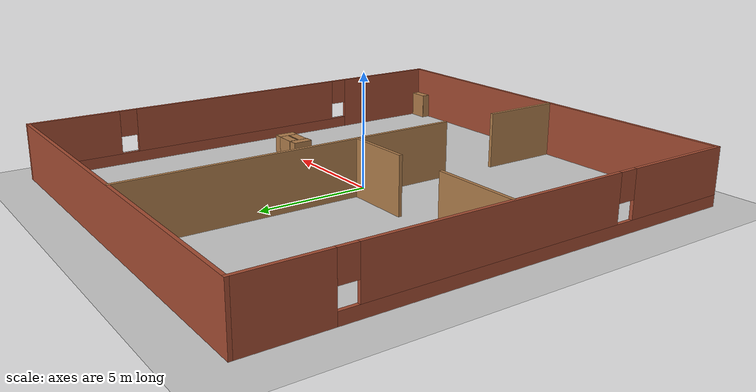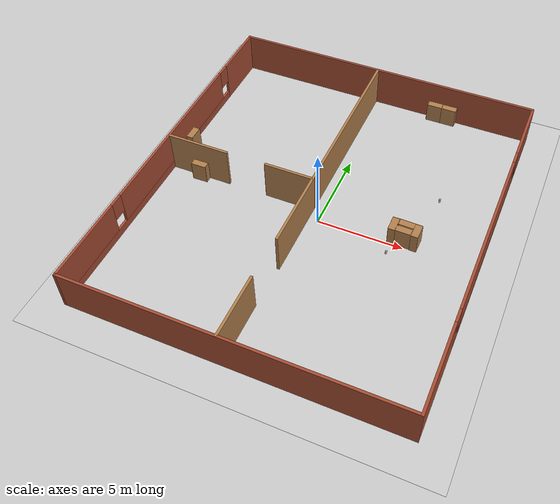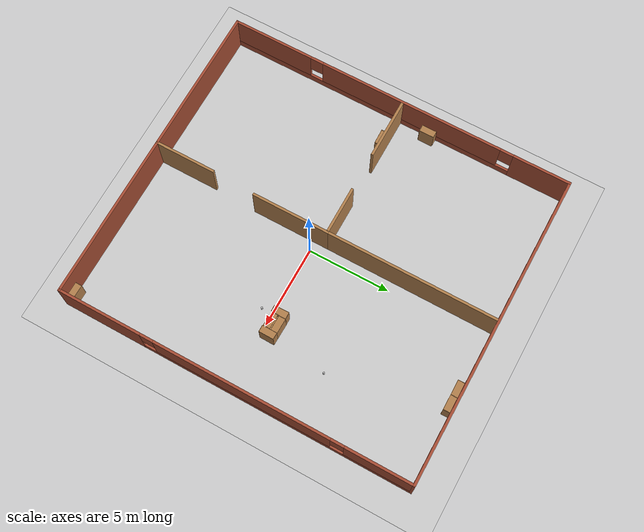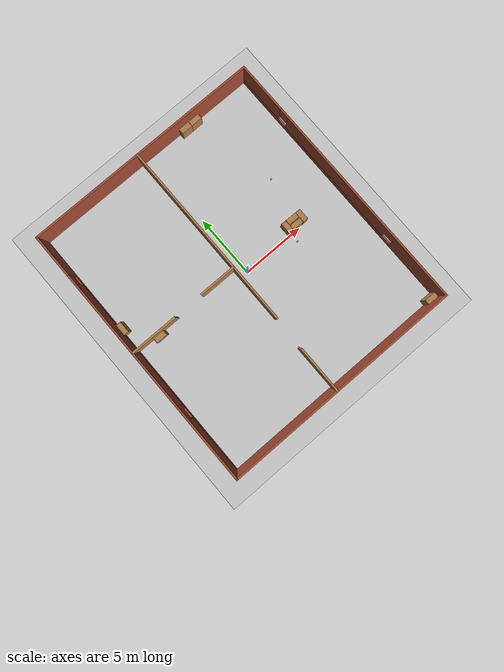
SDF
<sdf version="1.6">
 <world name="default">
  <light name="sun" type="directional">
   <pose>0 0 10 0 -0 0</pose>
   <diffuse>0.8 0.8 0.8 1</diffuse>
   <specular>0.2 0.2 0.2 1</specular>
   <attenuation>
    <range>1000</range>
    <constant>0.9</constant>
    <linear>0.01</linear>
    <quadratic>0.001</quadratic>
   </attenuation>
   <direction>-0.5 0.1 -0.9</direction>
  </light>
  <model name="ground_plane">
   <static>1</static>
   <link name="link">
    <collision name="collision">
     <geometry><plane><normal>0 0 1</normal><size>100 100</size></plane></geometry>
     <surface>
      <contact><collide_bitmask>65535</collide_bitmask></contact>
      <friction><ode><mu>100</mu><mu2>50</mu2></ode></friction>
     </surface>
    </collision>
    <visual name="visual">
     <cast_shadows>0</cast_shadows>
     <geometry><plane><normal>0 0 1</normal><size>100 100</size></plane></geometry>
     <material>
      <script><uri>file://media/materials/scripts/gazebo.material</uri><name>Gazebo/Grey</name></script>
     </material>
    </visual>
   </link>
  </model>
  <gravity>0 0 -9.8</gravity>
  <magnetic_field>6e-06 2.3e-05 -4.2e-05</magnetic_field>
  <atmosphere type="adiabatic"/>
  <physics name="default_physics" default="0" type="ode">
   <max_step_size>0.001</max_step_size>
   <real_time_factor>1</real_time_factor>
   <real_time_update_rate>1000</real_time_update_rate>
  </physics>
  <scene><ambient>0.4 0.4 0.4 1</ambient><background>0.7 0.7 0.7 1</background><shadows>1</shadows></scene>
  <audio><device>default</device></audio>
  <spherical_coordinates>
   <surface_model>EARTH_WGS84</surface_model>
   <latitude_deg>0</latitude_deg>
   <longitude_deg>0</longitude_deg>
   <elevation>0</elevation>
   <heading_deg>0</heading_deg>
  </spherical_coordinates>
  <model name="room">
   <pose>-0.232569 0.4756 0 0 -0 0</pose>
   <link name="Wall_11">
    <collision name="Wall_11_Collision">
     <geometry><box><size>19 0.15 2.5</size></box></geometry>
     <pose>0 0 1.25 0 -0 0</pose>
    </collision>
    <visual name="Wall_11_Visual">
     <pose>0 0 1.25 0 -0 0</pose>
     <geometry><box><size>19 0.15 2.5</size></box></geometry>
     <material>
      <script><uri>file://media/materials/scripts/gazebo.material</uri><name>Gazebo/Bricks</name></script>
      <ambient>1 1 1 1</ambient>
     </material>
     <meta><layer>0</layer></meta>
    </visual>
    <pose>0 -10.675 0 0 -0 0</pose>
   </link>
   <link name="Wall_12">
    <pose>9.425 0 0 0 -0 1.5708</pose>
    <visual name="Wall_12_Visual_0">
     <pose>-8.17882 0 1.25 0 -0 0</pose>
     <geometry><box><size>5.14235 0.15 2.5</size></box></geometry>
     <material>
      <script><uri>file://media/materials/scripts/gazebo.material</uri><name>Gazebo/Bricks</name></script>
      <ambient>1 1 1 1</ambient>
     </material>
     <meta><layer>0</layer></meta>
    </visual>
    <collision name="Wall_12_Collision_0">
     <geometry><box><size>5.14235 0.15 2.5</size></box></geometry>
     <pose>-8.17882 0 1.25 0 -0 0</pose>
    </collision>
    <visual name="Wall_12_Visual_1">
     <pose>2.57118 0 0.25 0 -0 0</pose>
     <geometry><box><size>16.3576 0.15 0.5</size></box></geometry>
     <material>
      <script><uri>file://media/materials/scripts/gazebo.material</uri><name>Gazebo/Bricks</name></script>
      <ambient>1 1 1 1</ambient>
     </material>
     <meta><layer>0</layer></meta>
    </visual>
    <collision name="Wall_12_Collision_1">
     <geometry><box><size>16.3576 0.15 0.5</size></box></geometry>
     <pose>2.57118 0 0.25 0 -0 0</pose>
    </collision>
    <visual name="Wall_12_Visual_2">
     <pose>0.524718 0 1.5 0 -0 0</pose>
     <geometry><box><size>10.6647 0.15 2</size></box></geometry>
     <material>
      <script><uri>file://media/materials/scripts/gazebo.material</uri><name>Gazebo/Bricks</name></script>
      <ambient>1 1 1 1</ambient>
     </material>
     <meta><layer>0</layer></meta>
    </visual>
    <collision name="Wall_12_Collision_2">
     <geometry><box><size>10.6647 0.15 2</size></box></geometry>
     <pose>0.524718 0 1.5 0 -0 0</pose>
    </collision>
    <visual name="Wall_12_Visual_3">
     <pose>8.70354 0 1.5 0 -0 0</pose>
     <geometry><box><size>4.09291 0.15 2</size></box></geometry>
     <material>
      <script><uri>file://media/materials/scripts/gazebo.material</uri><name>Gazebo/Bricks</name></script>
      <ambient>1 1 1 1</ambient>
     </material>
     <meta><layer>0</layer></meta>
    </visual>
    <collision name="Wall_12_Collision_3">
     <geometry><box><size>4.09291 0.15 2</size></box></geometry>
     <pose>8.70354 0 1.5 0 -0 0</pose>
    </collision>
    <visual name="Wall_12_Visual_4">
     <pose>-5.20765 0 1.9 0 -0 0</pose>
     <geometry><box><size>0.8 0.15 1.2</size></box></geometry>
     <material>
      <script><uri>file://media/materials/scripts/gazebo.material</uri><name>Gazebo/Bricks</name></script>
      <ambient>1 1 1 1</ambient>
     </material>
     <meta><layer>0</layer></meta>
    </visual>
    <collision name="Wall_12_Collision_4">
     <geometry><box><size>0.8 0.15 1.2</size></box></geometry>
     <pose>-5.20765 0 1.9 0 -0 0</pose>
    </collision>
    <visual name="Wall_12_Visual_5">
     <pose>6.25709 0 1.9 0 -0 0</pose>
     <geometry><box><size>0.8 0.15 1.2</size></box></geometry>
     <material>
      <script><uri>file://media/materials/scripts/gazebo.material</uri><name>Gazebo/Bricks</name></script>
      <ambient>1 1 1 1</ambient>
     </material>
     <meta><layer>0</layer></meta>
    </visual>
    <collision name="Wall_12_Collision_5">
     <geometry><box><size>0.8 0.15 1.2</size></box></geometry>
     <pose>6.25709 0 1.9 0 -0 0</pose>
    </collision>
   </link>
   <link name="Wall_13">
    <collision name="Wall_13_Collision">
     <geometry><box><size>19 0.15 2.5</size></box></geometry>
     <pose>0 0 1.25 0 -0 0</pose>
    </collision>
    <visual name="Wall_13_Visual">
     <pose>0 0 1.25 0 -0 0</pose>
     <geometry><box><size>19 0.15 2.5</size></box></geometry>
     <material>
      <script><uri>file://media/materials/scripts/gazebo.material</uri><name>Gazebo/Bricks</name></script>
      <ambient>1 1 1 1</ambient>
     </material>
     <meta><layer>0</layer></meta>
    </visual>
    <pose>0 10.675 0 0 -0 3.14159</pose>
   </link>
   <link name="Wall_14">
    <pose>-9.425 0 0 0 -0 -1.5708</pose>
    <visual name="Wall_14_Visual_0">
     <pose>-8.98513 0 1.25 0 -0 0</pose>
     <geometry><box><size>3.52973 0.15 2.5</size></box></geometry>
     <material>
      <script><uri>file://media/materials/scripts/gazebo.material</uri><name>Gazebo/Bricks</name></script>
      <ambient>1 1 1 1</ambient>
     </material>
     <meta><layer>0</layer></meta>
    </visual>
    <collision name="Wall_14_Collision_0">
     <geometry><box><size>3.52973 0.15 2.5</size></box></geometry>
     <pose>-8.98513 0 1.25 0 -0 0</pose>
    </collision>
    <visual name="Wall_14_Visual_1">
     <pose>1.76487 0 0.25 0 -0 0</pose>
     <geometry><box><size>17.9703 0.15 0.5</size></box></geometry>
     <material>
      <script><uri>file://media/materials/scripts/gazebo.material</uri><name>Gazebo/Bricks</name></script>
      <ambient>1 1 1 1</ambient>
     </material>
     <meta><layer>0</layer></meta>
    </visual>
    <collision name="Wall_14_Collision_1">
     <geometry><box><size>17.9703 0.15 0.5</size></box></geometry>
     <pose>1.76487 0 0.25 0 -0 0</pose>
    </collision>
    <visual name="Wall_14_Visual_2">
     <pose>-0.745967 0 1.5 0 -0 0</pose>
     <geometry><box><size>11.3486 0.15 2</size></box></geometry>
     <material>
      <script><uri>file://media/materials/scripts/gazebo.material</uri><name>Gazebo/Bricks</name></script>
      <ambient>1 1 1 1</ambient>
     </material>
     <meta><layer>0</layer></meta>
    </visual>
    <collision name="Wall_14_Collision_2">
     <geometry><box><size>11.3486 0.15 2</size></box></geometry>
     <pose>-0.745967 0 1.5 0 -0 0</pose>
    </collision>
    <visual name="Wall_14_Visual_3">
     <pose>8.23917 0 1.5 0 -0 0</pose>
     <geometry><box><size>5.02167 0.15 2</size></box></geometry>
     <material>
      <script><uri>file://media/materials/scripts/gazebo.material</uri><name>Gazebo/Bricks</name></script>
      <ambient>1 1 1 1</ambient>
     </material>
     <meta><layer>0</layer></meta>
    </visual>
    <collision name="Wall_14_Collision_3">
     <geometry><box><size>5.02167 0.15 2</size></box></geometry>
     <pose>8.23917 0 1.5 0 -0 0</pose>
    </collision>
    <visual name="Wall_14_Visual_4">
     <pose>-6.82027 0 1.9 0 -0 0</pose>
     <geometry><box><size>0.8 0.15 1.2</size></box></geometry>
     <material>
      <script><uri>file://media/materials/scripts/gazebo.material</uri><name>Gazebo/Bricks</name></script>
      <ambient>1 1 1 1</ambient>
     </material>
     <meta><layer>0</layer></meta>
    </visual>
    <collision name="Wall_14_Collision_4">
     <geometry><box><size>0.8 0.15 1.2</size></box></geometry>
     <pose>-6.82027 0 1.9 0 -0 0</pose>
    </collision>
    <visual name="Wall_14_Visual_5">
     <pose>5.32833 0 1.9 0 -0 0</pose>
     <geometry><box><size>0.8 0.15 1.2</size></box></geometry>
     <material>
      <script><uri>file://media/materials/scripts/gazebo.material</uri><name>Gazebo/Bricks</name></script>
      <ambient>1 1 1 1</ambient>
     </material>
     <meta><layer>0</layer></meta>
    </visual>
    <collision name="Wall_14_Collision_5">
     <geometry><box><size>0.8 0.15 1.2</size></box></geometry>
     <pose>5.32833 0 1.9 0 -0 0</pose>
    </collision>
   </link>
   <link name="Wall_16">
    <collision name="Wall_16_Collision">
     <geometry><box><size>10.5 0.15 2.5</size></box></geometry>
     <pose>0 0 1.25 0 -0 0</pose>
    </collision>
    <visual name="Wall_16_Visual">
     <pose>0 0 1.25 0 -0 0</pose>
     <geometry><box><size>10.5 0.15 2.5</size></box></geometry>
     <material>
      <script><uri>file://media/materials/scripts/gazebo.material</uri><name>Gazebo/Wood</name></script>
      <ambient>1 1 1 1</ambient>
     </material>
     <meta><layer>0</layer></meta>
    </visual>
    <pose>-0.400537 5.45543 0 0 -0 -1.5708</pose>
   </link>
   <link name="Wall_17">
    <collision name="Wall_17_Collision">
     <geometry><box><size>3 0.15 2.5</size></box></geometry>
     <pose>0 0 1.25 0 -0 0</pose>
    </collision>
    <visual name="Wall_17_Visual">
     <pose>0 0 1.25 0 -0 0</pose>
     <geometry><box><size>3 0.15 2.5</size></box></geometry>
     <material>
      <script><uri>file://media/materials/scripts/gazebo.material</uri><name>Gazebo/Wood</name></script>
      <ambient>1 1 1 1</ambient>
     </material>
     <meta><layer>0</layer></meta>
    </visual>
    <pose>-1.82554 0.280435 0 0 -0 3.14159</pose>
   </link>
   <link name="Wall_19">
    <collision name="Wall_19_Collision">
     <geometry><box><size>3.75 0.15 2.5</size></box></geometry>
     <pose>0 0 1.25 0 -0 0</pose>
    </collision>
    <visual name="Wall_19_Visual">
     <pose>0 0 1.25 0 -0 0</pose>
     <geometry><box><size>3.75 0.15 2.5</size></box></geometry>
     <material>
      <script><uri>file://media/materials/scripts/gazebo.material</uri><name>Gazebo/Wood</name></script>
      <ambient>1 1 1 1</ambient>
     </material>
     <meta><layer>0</layer></meta>
    </visual>
    <pose>-7.5382 0.256358 0 0 -0 0</pose>
   </link>
   <link name="Wall_21">
    <collision name="Wall_21_Collision">
     <geometry><box><size>4.75 0.15 2.5</size></box></geometry>
     <pose>0 0 1.25 0 -0 0</pose>
    </collision>
    <visual name="Wall_21_Visual">
     <pose>0 0 1.25 0 -0 0</pose>
     <geometry><box><size>4.75 0.15 2.5</size></box></geometry>
     <material>
      <script><uri>file://media/materials/scripts/gazebo.material</uri><name>Gazebo/Wood</name></script>
      <ambient>1 1 1 1</ambient>
     </material>
     <meta><layer>0</layer></meta>
    </visual>
    <pose>-0.400537 -2.01957 0 0 -0 -1.5708</pose>
   </link>
   <link name="Wall_23">
    <collision name="Wall_23_Collision">
     <geometry><box><size>3.75 0.15 2.5</size></box></geometry>
     <pose>0 0 1.25 0 -0 0</pose>
    </collision>
    <visual name="Wall_23_Visual">
     <pose>0 0 1.25 0 -0 0</pose>
     <geometry><box><size>3.75 0.15 2.5</size></box></geometry>
     <material>
      <script><uri>file://media/materials/scripts/gazebo.material</uri><name>Gazebo/Wood</name></script>
      <ambient>1 1 1 1</ambient>
     </material>
     <meta><layer>0</layer></meta>
    </visual>
    <pose>-0.506938 -8.84972 0 0 -0 1.5708</pose>
   </link>
   <static>1</static>
  </model>
  <model name="bookshelf">
   <static>1</static>
   <link name="link">
    <inertial><mass>1</mass></inertial>
    <collision name="back">
     <pose>0 0.005 0.6 0 -0 0</pose>
     <geometry><box><size>0.9 0.01 1.2</size></box></geometry>
    </collision>
    <visual name="visual1">
     <pose>0 0.005 0.6 0 -0 0</pose>
     <geometry><box><size>0.9 0.01 1.2</size></box></geometry>
     <material>
      <script><uri>file://media/materials/scripts/gazebo.material</uri><name>Gazebo/Wood</name></script>
     </material>
    </visual>
    <collision name="left_side">
     <pose>0.45 -0.195 0.6 0 -0 0</pose>
     <geometry><box><size>0.02 0.4 1.2</size></box></geometry>
    </collision>
    <visual name="visual2">
     <pose>0.45 -0.195 0.6 0 -0 0</pose>
     <geometry><box><size>0.02 0.4 1.2</size></box></geometry>
     <material>
      <script><uri>file://media/materials/scripts/gazebo.material</uri><name>Gazebo/Wood</name></script>
     </material>
    </visual>
    <collision name="right_side">
     <pose>-0.45 -0.195 0.6 0 -0 0</pose>
     <geometry><box><size>0.02 0.4 1.2</size></box></geometry>
    </collision>
    <visual name="visual3">
     <pose>-0.45 -0.195 0.6 0 -0 0</pose>
     <geometry><box><size>0.02 0.4 1.2</size></box></geometry>
     <material>
      <script><uri>file://media/materials/scripts/gazebo.material</uri><name>Gazebo/Wood</name></script>
     </material>
    </visual>
    <collision name="bottom">
     <pose>0 -0.195 0.03 0 -0 0</pose>
     <geometry><box><size>0.88 0.4 0.06</size></box></geometry>
    </collision>
    <visual name="visual4">
     <pose>0 -0.195 0.03 0 -0 0</pose>
     <geometry><box><size>0.88 0.4 0.06</size></box></geometry>
     <material>
      <script><uri>file://media/materials/scripts/gazebo.material</uri><name>Gazebo/Wood</name></script>
     </material>
    </visual>
    <collision name="top">
     <pose>0 -0.195 1.19 0 -0 0</pose>
     <geometry><box><size>0.88 0.4 0.02</size></box></geometry>
    </collision>
    <visual name="visual5">
     <pose>0 -0.195 1.19 0 -0 0</pose>
     <geometry><box><size>0.88 0.4 0.02</size></box></geometry>
     <material>
      <script><uri>file://media/materials/scripts/gazebo.material</uri><name>Gazebo/Wood</name></script>
     </material>
    </visual>
    <collision name="low_shelf">
     <pose>0 -0.195 0.43 0 -0 0</pose>
     <geometry><box><size>0.88 0.4 0.02</size></box></geometry>
    </collision>
    <visual name="visual6">
     <pose>0 -0.195 0.43 0 -0 0</pose>
     <geometry><box><size>0.88 0.4 0.02</size></box></geometry>
     <material>
      <script><uri>file://media/materials/scripts/gazebo.material</uri><name>Gazebo/Wood</name></script>
     </material>
    </visual>
    <collision name="high_shelf">
     <pose>0 -0.195 0.8 0 -0 0</pose>
     <geometry><box><size>0.88 0.4 0.02</size></box></geometry>
    </collision>
    <visual name="visual7">
     <pose>0 -0.195 0.8 0 -0 0</pose>
     <geometry><box><size>0.88 0.4 0.02</size></box></geometry>
     <material>
      <script><uri>file://media/materials/scripts/gazebo.material</uri><name>Gazebo/Wood</name></script>
     </material>
    </visual>
   </link>
   <pose>3.38349 10.6703 0 0 0 -3.13268</pose>
  </model>
  <model name="bookshelf_0">
   <static>1</static>
   <link name="link">
    <inertial><mass>1</mass></inertial>
    <collision name="back">
     <pose>0 0.005 0.6 0 -0 0</pose>
     <geometry><box><size>0.9 0.01 1.2</size></box></geometry>
    </collision>
    <visual name="visual1">
     <pose>0 0.005 0.6 0 -0 0</pose>
     <geometry><box><size>0.9 0.01 1.2</size></box></geometry>
     <material>
      <script><uri>file://media/materials/scripts/gazebo.material</uri><name>Gazebo/Wood</name></script>
     </material>
    </visual>
    <collision name="left_side">
     <pose>0.45 -0.195 0.6 0 -0 0</pose>
     <geometry><box><size>0.02 0.4 1.2</size></box></geometry>
    </collision>
    <visual name="visual2">
     <pose>0.45 -0.195 0.6 0 -0 0</pose>
     <geometry><box><size>0.02 0.4 1.2</size></box></geometry>
     <material>
      <script><uri>file://media/materials/scripts/gazebo.material</uri><name>Gazebo/Wood</name></script>
     </material>
    </visual>
    <collision name="right_side">
     <pose>-0.45 -0.195 0.6 0 -0 0</pose>
     <geometry><box><size>0.02 0.4 1.2</size></box></geometry>
    </collision>
    <visual name="visual3">
     <pose>-0.45 -0.195 0.6 0 -0 0</pose>
     <geometry><box><size>0.02 0.4 1.2</size></box></geometry>
     <material>
      <script><uri>file://media/materials/scripts/gazebo.material</uri><name>Gazebo/Wood</name></script>
     </material>
    </visual>
    <collision name="bottom">
     <pose>0 -0.195 0.03 0 -0 0</pose>
     <geometry><box><size>0.88 0.4 0.06</size></box></geometry>
    </collision>
    <visual name="visual4">
     <pose>0 -0.195 0.03 0 -0 0</pose>
     <geometry><box><size>0.88 0.4 0.06</size></box></geometry>
     <material>
      <script><uri>file://media/materials/scripts/gazebo.material</uri><name>Gazebo/Wood</name></script>
     </material>
    </visual>
    <collision name="top">
     <pose>0 -0.195 1.19 0 -0 0</pose>
     <geometry><box><size>0.88 0.4 0.02</size></box></geometry>
    </collision>
    <visual name="visual5">
     <pose>0 -0.195 1.19 0 -0 0</pose>
     <geometry><box><size>0.88 0.4 0.02</size></box></geometry>
     <material>
      <script><uri>file://media/materials/scripts/gazebo.material</uri><name>Gazebo/Wood</name></script>
     </material>
    </visual>
    <collision name="low_shelf">
     <pose>0 -0.195 0.43 0 -0 0</pose>
     <geometry><box><size>0.88 0.4 0.02</size></box></geometry>
    </collision>
    <visual name="visual6">
     <pose>0 -0.195 0.43 0 -0 0</pose>
     <geometry><box><size>0.88 0.4 0.02</size></box></geometry>
     <material>
      <script><uri>file://media/materials/scripts/gazebo.material</uri><name>Gazebo/Wood</name></script>
     </material>
    </visual>
    <collision name="high_shelf">
     <pose>0 -0.195 0.8 0 -0 0</pose>
     <geometry><box><size>0.88 0.4 0.02</size></box></geometry>
    </collision>
    <visual name="visual7">
     <pose>0 -0.195 0.8 0 -0 0</pose>
     <geometry><box><size>0.88 0.4 0.02</size></box></geometry>
     <material>
      <script><uri>file://media/materials/scripts/gazebo.material</uri><name>Gazebo/Wood</name></script>
     </material>
    </visual>
   </link>
   <pose>4.28788 10.673 0 0 -0 3.14128</pose>
  </model>
  <model name="bookshelf_1">
   <static>1</static>
   <link name="link">
    <inertial><mass>1</mass></inertial>
    <collision name="back">
     <pose>0 0.005 0.6 0 -0 0</pose>
     <geometry><box><size>0.9 0.01 1.2</size></box></geometry>
    </collision>
    <visual name="visual1">
     <pose>0 0.005 0.6 0 -0 0</pose>
     <geometry><box><size>0.9 0.01 1.2</size></box></geometry>
     <material>
      <script><uri>file://media/materials/scripts/gazebo.material</uri><name>Gazebo/Wood</name></script>
     </material>
    </visual>
    <collision name="left_side">
     <pose>0.45 -0.195 0.6 0 -0 0</pose>
     <geometry><box><size>0.02 0.4 1.2</size></box></geometry>
    </collision>
    <visual name="visual2">
     <pose>0.45 -0.195 0.6 0 -0 0</pose>
     <geometry><box><size>0.02 0.4 1.2</size></box></geometry>
     <material>
      <script><uri>file://media/materials/scripts/gazebo.material</uri><name>Gazebo/Wood</name></script>
     </material>
    </visual>
    <collision name="right_side">
     <pose>-0.45 -0.195 0.6 0 -0 0</pose>
     <geometry><box><size>0.02 0.4 1.2</size></box></geometry>
    </collision>
    <visual name="visual3">
     <pose>-0.45 -0.195 0.6 0 -0 0</pose>
     <geometry><box><size>0.02 0.4 1.2</size></box></geometry>
     <material>
      <script><uri>file://media/materials/scripts/gazebo.material</uri><name>Gazebo/Wood</name></script>
     </material>
    </visual>
    <collision name="bottom">
     <pose>0 -0.195 0.03 0 -0 0</pose>
     <geometry><box><size>0.88 0.4 0.06</size></box></geometry>
    </collision>
    <visual name="visual4">
     <pose>0 -0.195 0.03 0 -0 0</pose>
     <geometry><box><size>0.88 0.4 0.06</size></box></geometry>
     <material>
      <script><uri>file://media/materials/scripts/gazebo.material</uri><name>Gazebo/Wood</name></script>
     </material>
    </visual>
    <collision name="top">
     <pose>0 -0.195 1.19 0 -0 0</pose>
     <geometry><box><size>0.88 0.4 0.02</size></box></geometry>
    </collision>
    <visual name="visual5">
     <pose>0 -0.195 1.19 0 -0 0</pose>
     <geometry><box><size>0.88 0.4 0.02</size></box></geometry>
     <material>
      <script><uri>file://media/materials/scripts/gazebo.material</uri><name>Gazebo/Wood</name></script>
     </material>
    </visual>
    <collision name="low_shelf">
     <pose>0 -0.195 0.43 0 -0 0</pose>
     <geometry><box><size>0.88 0.4 0.02</size></box></geometry>
    </collision>
    <visual name="visual6">
     <pose>0 -0.195 0.43 0 -0 0</pose>
     <geometry><box><size>0.88 0.4 0.02</size></box></geometry>
     <material>
      <script><uri>file://media/materials/scripts/gazebo.material</uri><name>Gazebo/Wood</name></script>
     </material>
    </visual>
    <collision name="high_shelf">
     <pose>0 -0.195 0.8 0 -0 0</pose>
     <geometry><box><size>0.88 0.4 0.02</size></box></geometry>
    </collision>
    <visual name="visual7">
     <pose>0 -0.195 0.8 0 -0 0</pose>
     <geometry><box><size>0.88 0.4 0.02</size></box></geometry>
     <material>
      <script><uri>file://media/materials/scripts/gazebo.material</uri><name>Gazebo/Wood</name></script>
     </material>
    </visual>
   </link>
   <pose>-7.65992 0.266954 0 0 0 -3.12128</pose>
  </model>
  <model name="beer">
   <link name="link">
    <pose>0 0 0.115 0 -0 0</pose>
    <inertial>
     <mass>0.39</mass>
     <inertia><ixx>0.00058</ixx><ixy>0</ixy><ixz>0</ixz><iyy>0.00058</iyy><iyz>0</iyz><izz>0.00019</izz></inertia>
    </inertial>
    <collision name="collision">
     <geometry><cylinder><radius>0.055</radius><length>0.23</length></cylinder></geometry>
    </collision>
    <visual name="visual">
     <geometry><cylinder><radius>0.055</radius><length>0.23</length></cylinder></geometry>
     <material>
      <script>
       <uri>model://beer/materials/scripts</uri>
       <uri>model://beer/materials/textures</uri>
       <name>Beer/Diffuse</name>
      </script>
     </material>
    </visual>
   </link>
   <pose>5.84886 4.11564 -7e-06 -0 -0 -3.8e-05</pose>
  </model>
  <model name="beer_0">
   <link name="link">
    <pose>0 0 0.115 0 -0 0</pose>
    <inertial>
     <mass>0.39</mass>
     <inertia><ixx>0.00058</ixx><ixy>0</ixy><ixz>0</ixz><iyy>0.00058</iyy><iyz>0</iyz><izz>0.00019</izz></inertia>
    </inertial>
    <collision name="collision">
     <geometry><cylinder><radius>0.055</radius><length>0.23</length></cylinder></geometry>
    </collision>
    <visual name="visual">
     <geometry><cylinder><radius>0.055</radius><length>0.23</length></cylinder></geometry>
     <material>
      <script>
       <uri>model://beer/materials/scripts</uri>
       <uri>model://beer/materials/textures</uri>
       <name>Beer/Diffuse</name>
      </script>
     </material>
    </visual>
   </link>
   <pose>4.27986 -0.658719 -7e-06 -0 -0 -3.7e-05</pose>
  </model>
  <model name="bookshelf_2">
   <static>1</static>
   <link name="link">
    <inertial><mass>1</mass></inertial>
    <collision name="back">
     <pose>0 0.005 0.6 0 -0 0</pose>
     <geometry><box><size>0.9 0.01 1.2</size></box></geometry>
    </collision>
    <visual name="visual1">
     <pose>0 0.005 0.6 0 -0 0</pose>
     <geometry><box><size>0.9 0.01 1.2</size></box></geometry>
     <material>
      <script><uri>file://media/materials/scripts/gazebo.material</uri><name>Gazebo/Wood</name></script>
     </material>
    </visual>
    <collision name="left_side">
     <pose>0.45 -0.195 0.6 0 -0 0</pose>
     <geometry><box><size>0.02 0.4 1.2</size></box></geometry>
    </collision>
    <visual name="visual2">
     <pose>0.45 -0.195 0.6 0 -0 0</pose>
     <geometry><box><size>0.02 0.4 1.2</size></box></geometry>
     <material>
      <script><uri>file://media/materials/scripts/gazebo.material</uri><name>Gazebo/Wood</name></script>
     </material>
    </visual>
    <collision name="right_side">
     <pose>-0.45 -0.195 0.6 0 -0 0</pose>
     <geometry><box><size>0.02 0.4 1.2</size></box></geometry>
    </collision>
    <visual name="visual3">
     <pose>-0.45 -0.195 0.6 0 -0 0</pose>
     <geometry><box><size>0.02 0.4 1.2</size></box></geometry>
     <material>
      <script><uri>file://media/materials/scripts/gazebo.material</uri><name>Gazebo/Wood</name></script>
     </material>
    </visual>
    <collision name="bottom">
     <pose>0 -0.195 0.03 0 -0 0</pose>
     <geometry><box><size>0.88 0.4 0.06</size></box></geometry>
    </collision>
    <visual name="visual4">
     <pose>0 -0.195 0.03 0 -0 0</pose>
     <geometry><box><size>0.88 0.4 0.06</size></box></geometry>
     <material>
      <script><uri>file://media/materials/scripts/gazebo.material</uri><name>Gazebo/Wood</name></script>
     </material>
    </visual>
    <collision name="top">
     <pose>0 -0.195 1.19 0 -0 0</pose>
     <geometry><box><size>0.88 0.4 0.02</size></box></geometry>
    </collision>
    <visual name="visual5">
     <pose>0 -0.195 1.19 0 -0 0</pose>
     <geometry><box><size>0.88 0.4 0.02</size></box></geometry>
     <material>
      <script><uri>file://media/materials/scripts/gazebo.material</uri><name>Gazebo/Wood</name></script>
     </material>
    </visual>
    <collision name="low_shelf">
     <pose>0 -0.195 0.43 0 -0 0</pose>
     <geometry><box><size>0.88 0.4 0.02</size></box></geometry>
    </collision>
    <visual name="visual6">
     <pose>0 -0.195 0.43 0 -0 0</pose>
     <geometry><box><size>0.88 0.4 0.02</size></box></geometry>
     <material>
      <script><uri>file://media/materials/scripts/gazebo.material</uri><name>Gazebo/Wood</name></script>
     </material>
    </visual>
    <collision name="high_shelf">
     <pose>0 -0.195 0.8 0 -0 0</pose>
     <geometry><box><size>0.88 0.4 0.02</size></box></geometry>
    </collision>
    <visual name="visual7">
     <pose>0 -0.195 0.8 0 -0 0</pose>
     <geometry><box><size>0.88 0.4 0.02</size></box></geometry>
     <material>
      <script><uri>file://media/materials/scripts/gazebo.material</uri><name>Gazebo/Wood</name></script>
     </material>
    </visual>
   </link>
   <pose>-9.12988 2.63073 0 0 0 -1.56879</pose>
  </model>
  <model name="bookshelf_3">
   <static>1</static>
   <link name="link">
    <inertial><mass>1</mass></inertial>
    <collision name="back">
     <pose>0 0.005 0.6 0 -0 0</pose>
     <geometry><box><size>0.9 0.01 1.2</size></box></geometry>
    </collision>
    <visual name="visual1">
     <pose>0 0.005 0.6 0 -0 0</pose>
     <geometry><box><size>0.9 0.01 1.2</size></box></geometry>
     <material>
      <script><uri>file://media/materials/scripts/gazebo.material</uri><name>Gazebo/Wood</name></script>
     </material>
    </visual>
    <collision name="left_side">
     <pose>0.45 -0.195 0.6 0 -0 0</pose>
     <geometry><box><size>0.02 0.4 1.2</size></box></geometry>
    </collision>
    <visual name="visual2">
     <pose>0.45 -0.195 0.6 0 -0 0</pose>
     <geometry><box><size>0.02 0.4 1.2</size></box></geometry>
     <material>
      <script><uri>file://media/materials/scripts/gazebo.material</uri><name>Gazebo/Wood</name></script>
     </material>
    </visual>
    <collision name="right_side">
     <pose>-0.45 -0.195 0.6 0 -0 0</pose>
     <geometry><box><size>0.02 0.4 1.2</size></box></geometry>
    </collision>
    <visual name="visual3">
     <pose>-0.45 -0.195 0.6 0 -0 0</pose>
     <geometry><box><size>0.02 0.4 1.2</size></box></geometry>
     <material>
      <script><uri>file://media/materials/scripts/gazebo.material</uri><name>Gazebo/Wood</name></script>
     </material>
    </visual>
    <collision name="bottom">
     <pose>0 -0.195 0.03 0 -0 0</pose>
     <geometry><box><size>0.88 0.4 0.06</size></box></geometry>
    </collision>
    <visual name="visual4">
     <pose>0 -0.195 0.03 0 -0 0</pose>
     <geometry><box><size>0.88 0.4 0.06</size></box></geometry>
     <material>
      <script><uri>file://media/materials/scripts/gazebo.material</uri><name>Gazebo/Wood</name></script>
     </material>
    </visual>
    <collision name="top">
     <pose>0 -0.195 1.19 0 -0 0</pose>
     <geometry><box><size>0.88 0.4 0.02</size></box></geometry>
    </collision>
    <visual name="visual5">
     <pose>0 -0.195 1.19 0 -0 0</pose>
     <geometry><box><size>0.88 0.4 0.02</size></box></geometry>
     <material>
      <script><uri>file://media/materials/scripts/gazebo.material</uri><name>Gazebo/Wood</name></script>
     </material>
    </visual>
    <collision name="low_shelf">
     <pose>0 -0.195 0.43 0 -0 0</pose>
     <geometry><box><size>0.88 0.4 0.02</size></box></geometry>
    </collision>
    <visual name="visual6">
     <pose>0 -0.195 0.43 0 -0 0</pose>
     <geometry><box><size>0.88 0.4 0.02</size></box></geometry>
     <material>
      <script><uri>file://media/materials/scripts/gazebo.material</uri><name>Gazebo/Wood</name></script>
     </material>
    </visual>
    <collision name="high_shelf">
     <pose>0 -0.195 0.8 0 -0 0</pose>
     <geometry><box><size>0.88 0.4 0.02</size></box></geometry>
    </collision>
    <visual name="visual7">
     <pose>0 -0.195 0.8 0 -0 0</pose>
     <geometry><box><size>0.88 0.4 0.02</size></box></geometry>
     <material>
      <script><uri>file://media/materials/scripts/gazebo.material</uri><name>Gazebo/Wood</name></script>
     </material>
    </visual>
   </link>
   <pose>8.64704 -9.74336 0 0 -0 -0.013681</pose>
  </model>
  <model name="bookshelf_4">
   <static>1</static>
   <link name="link">
    <inertial><mass>1</mass></inertial>
    <collision name="back">
     <pose>0 0.005 0.6 0 -0 0</pose>
     <geometry><box><size>0.9 0.01 1.2</size></box></geometry>
    </collision>
    <visual name="visual1">
     <pose>0 0.005 0.6 0 -0 0</pose>
     <geometry><box><size>0.9 0.01 1.2</size></box></geometry>
     <material>
      <script><uri>file://media/materials/scripts/gazebo.material</uri><name>Gazebo/Wood</name></script>
     </material>
    </visual>
    <collision name="left_side">
     <pose>0.45 -0.195 0.6 0 -0 0</pose>
     <geometry><box><size>0.02 0.4 1.2</size></box></geometry>
    </collision>
    <visual name="visual2">
     <pose>0.45 -0.195 0.6 0 -0 0</pose>
     <geometry><box><size>0.02 0.4 1.2</size></box></geometry>
     <material>
      <script><uri>file://media/materials/scripts/gazebo.material</uri><name>Gazebo/Wood</name></script>
     </material>
    </visual>
    <collision name="right_side">
     <pose>-0.45 -0.195 0.6 0 -0 0</pose>
     <geometry><box><size>0.02 0.4 1.2</size></box></geometry>
    </collision>
    <visual name="visual3">
     <pose>-0.45 -0.195 0.6 0 -0 0</pose>
     <geometry><box><size>0.02 0.4 1.2</size></box></geometry>
     <material>
      <script><uri>file://media/materials/scripts/gazebo.material</uri><name>Gazebo/Wood</name></script>
     </material>
    </visual>
    <collision name="bottom">
     <pose>0 -0.195 0.03 0 -0 0</pose>
     <geometry><box><size>0.88 0.4 0.06</size></box></geometry>
    </collision>
    <visual name="visual4">
     <pose>0 -0.195 0.03 0 -0 0</pose>
     <geometry><box><size>0.88 0.4 0.06</size></box></geometry>
     <material>
      <script><uri>file://media/materials/scripts/gazebo.material</uri><name>Gazebo/Wood</name></script>
     </material>
    </visual>
    <collision name="top">
     <pose>0 -0.195 1.19 0 -0 0</pose>
     <geometry><box><size>0.88 0.4 0.02</size></box></geometry>
    </collision>
    <visual name="visual5">
     <pose>0 -0.195 1.19 0 -0 0</pose>
     <geometry><box><size>0.88 0.4 0.02</size></box></geometry>
     <material>
      <script><uri>file://media/materials/scripts/gazebo.material</uri><name>Gazebo/Wood</name></script>
     </material>
    </visual>
    <collision name="low_shelf">
     <pose>0 -0.195 0.43 0 -0 0</pose>
     <geometry><box><size>0.88 0.4 0.02</size></box></geometry>
    </collision>
    <visual name="visual6">
     <pose>0 -0.195 0.43 0 -0 0</pose>
     <geometry><box><size>0.88 0.4 0.02</size></box></geometry>
     <material>
      <script><uri>file://media/materials/scripts/gazebo.material</uri><name>Gazebo/Wood</name></script>
     </material>
    </visual>
    <collision name="high_shelf">
     <pose>0 -0.195 0.8 0 -0 0</pose>
     <geometry><box><size>0.88 0.4 0.02</size></box></geometry>
    </collision>
    <visual name="visual7">
     <pose>0 -0.195 0.8 0 -0 0</pose>
     <geometry><box><size>0.88 0.4 0.02</size></box></geometry>
     <material>
      <script><uri>file://media/materials/scripts/gazebo.material</uri><name>Gazebo/Wood</name></script>
     </material>
    </visual>
   </link>
   <pose>4.8843 0.100857 0 0 -0 3.12626</pose>
  </model>
  <model name="bookshelf_5">
   <static>1</static>
   <link name="link">
    <inertial><mass>1</mass></inertial>
    <collision name="back">
     <pose>0 0.005 0.6 0 -0 0</pose>
     <geometry><box><size>0.9 0.01 1.2</size></box></geometry>
    </collision>
    <visual name="visual1">
     <pose>0 0.005 0.6 0 -0 0</pose>
     <geometry><box><size>0.9 0.01 1.2</size></box></geometry>
     <material>
      <script><uri>file://media/materials/scripts/gazebo.material</uri><name>Gazebo/Wood</name></script>
     </material>
    </visual>
    <collision name="left_side">
     <pose>0.45 -0.195 0.6 0 -0 0</pose>
     <geometry><box><size>0.02 0.4 1.2</size></box></geometry>
    </collision>
    <visual name="visual2">
     <pose>0.45 -0.195 0.6 0 -0 0</pose>
     <geometry><box><size>0.02 0.4 1.2</size></box></geometry>
     <material>
      <script><uri>file://media/materials/scripts/gazebo.material</uri><name>Gazebo/Wood</name></script>
     </material>
    </visual>
    <collision name="right_side">
     <pose>-0.45 -0.195 0.6 0 -0 0</pose>
     <geometry><box><size>0.02 0.4 1.2</size></box></geometry>
    </collision>
    <visual name="visual3">
     <pose>-0.45 -0.195 0.6 0 -0 0</pose>
     <geometry><box><size>0.02 0.4 1.2</size></box></geometry>
     <material>
      <script><uri>file://media/materials/scripts/gazebo.material</uri><name>Gazebo/Wood</name></script>
     </material>
    </visual>
    <collision name="bottom">
     <pose>0 -0.195 0.03 0 -0 0</pose>
     <geometry><box><size>0.88 0.4 0.06</size></box></geometry>
    </collision>
    <visual name="visual4">
     <pose>0 -0.195 0.03 0 -0 0</pose>
     <geometry><box><size>0.88 0.4 0.06</size></box></geometry>
     <material>
      <script><uri>file://media/materials/scripts/gazebo.material</uri><name>Gazebo/Wood</name></script>
     </material>
    </visual>
    <collision name="top">
     <pose>0 -0.195 1.19 0 -0 0</pose>
     <geometry><box><size>0.88 0.4 0.02</size></box></geometry>
    </collision>
    <visual name="visual5">
     <pose>0 -0.195 1.19 0 -0 0</pose>
     <geometry><box><size>0.88 0.4 0.02</size></box></geometry>
     <material>
      <script><uri>file://media/materials/scripts/gazebo.material</uri><name>Gazebo/Wood</name></script>
     </material>
    </visual>
    <collision name="low_shelf">
     <pose>0 -0.195 0.43 0 -0 0</pose>
     <geometry><box><size>0.88 0.4 0.02</size></box></geometry>
    </collision>
    <visual name="visual6">
     <pose>0 -0.195 0.43 0 -0 0</pose>
     <geometry><box><size>0.88 0.4 0.02</size></box></geometry>
     <material>
      <script><uri>file://media/materials/scripts/gazebo.material</uri><name>Gazebo/Wood</name></script>
     </material>
    </visual>
    <collision name="high_shelf">
     <pose>0 -0.195 0.8 0 -0 0</pose>
     <geometry><box><size>0.88 0.4 0.02</size></box></geometry>
    </collision>
    <visual name="visual7">
     <pose>0 -0.195 0.8 0 -0 0</pose>
     <geometry><box><size>0.88 0.4 0.02</size></box></geometry>
     <material>
      <script><uri>file://media/materials/scripts/gazebo.material</uri><name>Gazebo/Wood</name></script>
     </material>
    </visual>
   </link>
   <pose>4.90435 0.968763 -0.000458 -0.000118 0.005492 -0.021448</pose>
  </model>
  <model name="bookshelf_6">
   <static>1</static>
   <link name="link">
    <inertial><mass>1</mass></inertial>
    <collision name="back">
     <pose>0 0.005 0.6 0 -0 0</pose>
     <geometry><box><size>0.9 0.01 1.2</size></box></geometry>
    </collision>
    <visual name="visual1">
     <pose>0 0.005 0.6 0 -0 0</pose>
     <geometry><box><size>0.9 0.01 1.2</size></box></geometry>
     <material>
      <script><uri>file://media/materials/scripts/gazebo.material</uri><name>Gazebo/Wood</name></script>
     </material>
    </visual>
    <collision name="left_side">
     <pose>0.45 -0.195 0.6 0 -0 0</pose>
     <geometry><box><size>0.02 0.4 1.2</size></box></geometry>
    </collision>
    <visual name="visual2">
     <pose>0.45 -0.195 0.6 0 -0 0</pose>
     <geometry><box><size>0.02 0.4 1.2</size></box></geometry>
     <material>
      <script><uri>file://media/materials/scripts/gazebo.material</uri><name>Gazebo/Wood</name></script>
     </material>
    </visual>
    <collision name="right_side">
     <pose>-0.45 -0.195 0.6 0 -0 0</pose>
     <geometry><box><size>0.02 0.4 1.2</size></box></geometry>
    </collision>
    <visual name="visual3">
     <pose>-0.45 -0.195 0.6 0 -0 0</pose>
     <geometry><box><size>0.02 0.4 1.2</size></box></geometry>
     <material>
      <script><uri>file://media/materials/scripts/gazebo.material</uri><name>Gazebo/Wood</name></script>
     </material>
    </visual>
    <collision name="bottom">
     <pose>0 -0.195 0.03 0 -0 0</pose>
     <geometry><box><size>0.88 0.4 0.06</size></box></geometry>
    </collision>
    <visual name="visual4">
     <pose>0 -0.195 0.03 0 -0 0</pose>
     <geometry><box><size>0.88 0.4 0.06</size></box></geometry>
     <material>
      <script><uri>file://media/materials/scripts/gazebo.material</uri><name>Gazebo/Wood</name></script>
     </material>
    </visual>
    <collision name="top">
     <pose>0 -0.195 1.19 0 -0 0</pose>
     <geometry><box><size>0.88 0.4 0.02</size></box></geometry>
    </collision>
    <visual name="visual5">
     <pose>0 -0.195 1.19 0 -0 0</pose>
     <geometry><box><size>0.88 0.4 0.02</size></box></geometry>
     <material>
      <script><uri>file://media/materials/scripts/gazebo.material</uri><name>Gazebo/Wood</name></script>
     </material>
    </visual>
    <collision name="low_shelf">
     <pose>0 -0.195 0.43 0 -0 0</pose>
     <geometry><box><size>0.88 0.4 0.02</size></box></geometry>
    </collision>
    <visual name="visual6">
     <pose>0 -0.195 0.43 0 -0 0</pose>
     <geometry><box><size>0.88 0.4 0.02</size></box></geometry>
     <material>
      <script><uri>file://media/materials/scripts/gazebo.material</uri><name>Gazebo/Wood</name></script>
     </material>
    </visual>
    <collision name="high_shelf">
     <pose>0 -0.195 0.8 0 -0 0</pose>
     <geometry><box><size>0.88 0.4 0.02</size></box></geometry>
    </collision>
    <visual name="visual7">
     <pose>0 -0.195 0.8 0 -0 0</pose>
     <geometry><box><size>0.88 0.4 0.02</size></box></geometry>
     <material>
      <script><uri>file://media/materials/scripts/gazebo.material</uri><name>Gazebo/Wood</name></script>
     </material>
    </visual>
   </link>
   <pose>5.74708 0.501188 0 0 0 -1.58565</pose>
  </model>
  <model name="bookshelf_7">
   <static>1</static>
   <link name="link">
    <inertial><mass>1</mass></inertial>
    <collision name="back">
     <pose>0 0.005 0.6 0 -0 0</pose>
     <geometry><box><size>0.9 0.01 1.2</size></box></geometry>
    </collision>
    <visual name="visual1">
     <pose>0 0.005 0.6 0 -0 0</pose>
     <geometry><box><size>0.9 0.01 1.2</size></box></geometry>
     <material>
      <script><uri>file://media/materials/scripts/gazebo.material</uri><name>Gazebo/Wood</name></script>
     </material>
    </visual>
    <collision name="left_side">
     <pose>0.45 -0.195 0.6 0 -0 0</pose>
     <geometry><box><size>0.02 0.4 1.2</size></box></geometry>
    </collision>
    <visual name="visual2">
     <pose>0.45 -0.195 0.6 0 -0 0</pose>
     <geometry><box><size>0.02 0.4 1.2</size></box></geometry>
     <material>
      <script><uri>file://media/materials/scripts/gazebo.material</uri><name>Gazebo/Wood</name></script>
     </material>
    </visual>
    <collision name="right_side">
     <pose>-0.45 -0.195 0.6 0 -0 0</pose>
     <geometry><box><size>0.02 0.4 1.2</size></box></geometry>
    </collision>
    <visual name="visual3">
     <pose>-0.45 -0.195 0.6 0 -0 0</pose>
     <geometry><box><size>0.02 0.4 1.2</size></box></geometry>
     <material>
      <script><uri>file://media/materials/scripts/gazebo.material</uri><name>Gazebo/Wood</name></script>
     </material>
    </visual>
    <collision name="bottom">
     <pose>0 -0.195 0.03 0 -0 0</pose>
     <geometry><box><size>0.88 0.4 0.06</size></box></geometry>
    </collision>
    <visual name="visual4">
     <pose>0 -0.195 0.03 0 -0 0</pose>
     <geometry><box><size>0.88 0.4 0.06</size></box></geometry>
     <material>
      <script><uri>file://media/materials/scripts/gazebo.material</uri><name>Gazebo/Wood</name></script>
     </material>
    </visual>
    <collision name="top">
     <pose>0 -0.195 1.19 0 -0 0</pose>
     <geometry><box><size>0.88 0.4 0.02</size></box></geometry>
    </collision>
    <visual name="visual5">
     <pose>0 -0.195 1.19 0 -0 0</pose>
     <geometry><box><size>0.88 0.4 0.02</size></box></geometry>
     <material>
      <script><uri>file://media/materials/scripts/gazebo.material</uri><name>Gazebo/Wood</name></script>
     </material>
    </visual>
    <collision name="low_shelf">
     <pose>0 -0.195 0.43 0 -0 0</pose>
     <geometry><box><size>0.88 0.4 0.02</size></box></geometry>
    </collision>
    <visual name="visual6">
     <pose>0 -0.195 0.43 0 -0 0</pose>
     <geometry><box><size>0.88 0.4 0.02</size></box></geometry>
     <material>
      <script><uri>file://media/materials/scripts/gazebo.material</uri><name>Gazebo/Wood</name></script>
     </material>
    </visual>
    <collision name="high_shelf">
     <pose>0 -0.195 0.8 0 -0 0</pose>
     <geometry><box><size>0.88 0.4 0.02</size></box></geometry>
    </collision>
    <visual name="visual7">
     <pose>0 -0.195 0.8 0 -0 0</pose>
     <geometry><box><size>0.88 0.4 0.02</size></box></geometry>
     <material>
      <script><uri>file://media/materials/scripts/gazebo.material</uri><name>Gazebo/Wood</name></script>
     </material>
    </visual>
   </link>
   <pose>4.04872 0.518342 0 0 -0 1.58455</pose>
  </model>
 </world>
</sdf>
